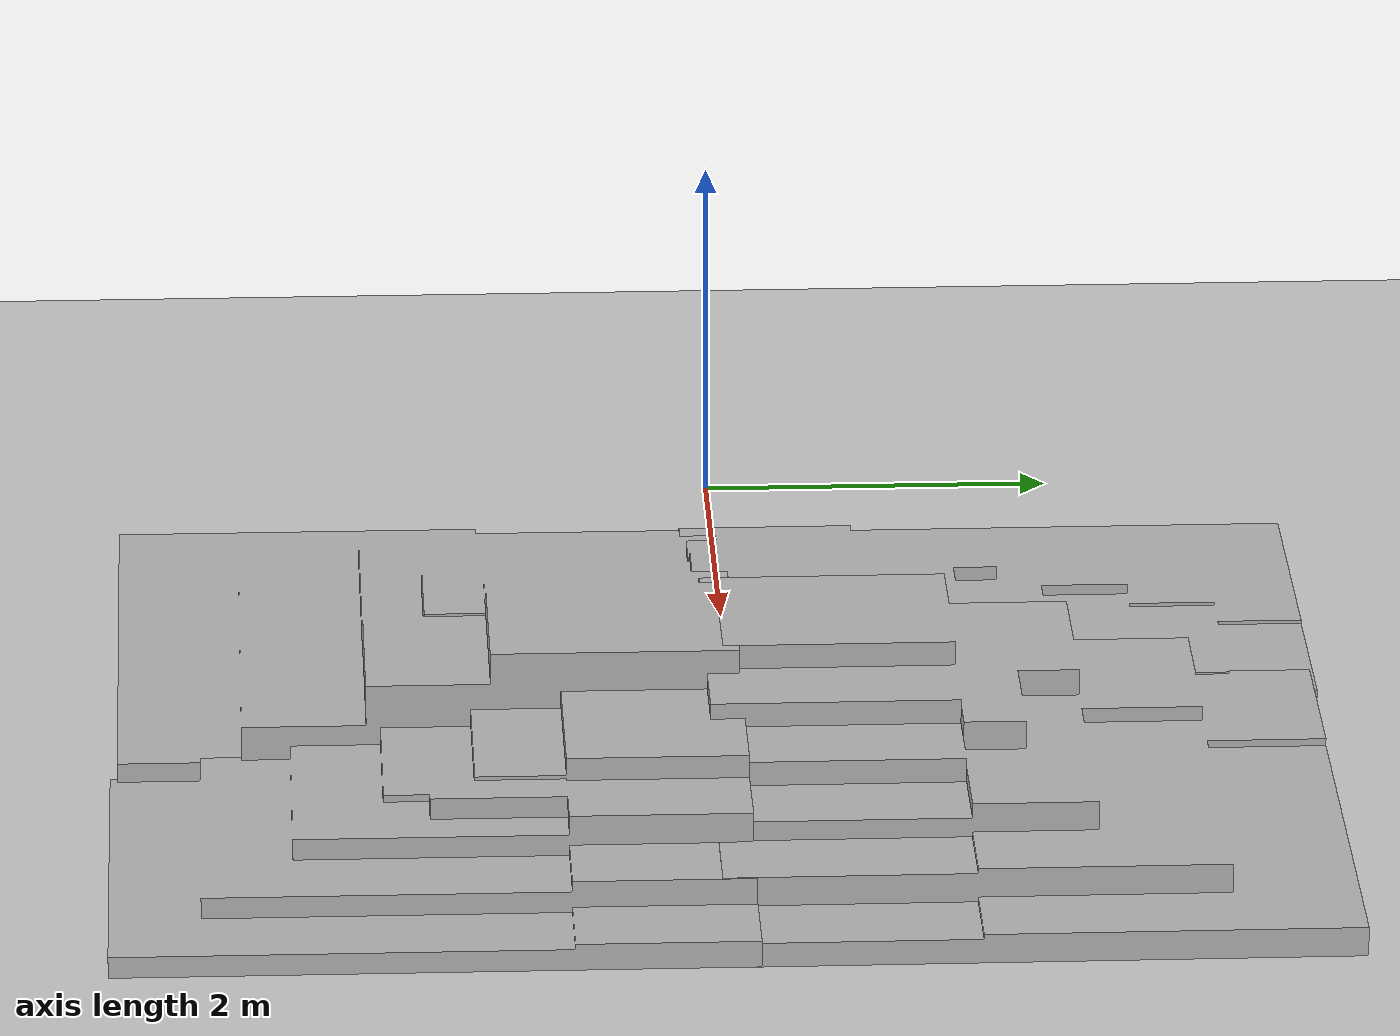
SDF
<?xml version="1.0" ?>
<sdf version="1.4">
  <world name="high_friction">
    <physics type='ode'>
      <gravity>0 0 -9.81</gravity>
      <ode>
        <solver>
          <type>quick</type>
          <iters>250</iters>
          <sor>1.</sor>
        </solver>
        <constraints>
          <cfm>0</cfm>
          <erp>0.2</erp>
          <contact_max_correcting_vel>100</contact_max_correcting_vel>
          <contact_surface_layer>0</contact_surface_layer>
        </constraints>
      </ode>
      <real_time_update_rate>1000</real_time_update_rate>
      <max_step_size>0.001</max_step_size>
      <real_time_factor>1</real_time_factor>
    </physics>
    <!-- A global light source -->
    <include>
      <uri>model://sun</uri>
    </include>
    <!-- A ground plane -->
    <model name="ground_plane">
        <static>true</static>
        <link name="link">
          <collision name="collision">
            <geometry>
              <plane>
                <normal>0 0 1</normal>
                <size>100 100</size>
              </plane>
            </geometry>
            <surface>
               <contact>
 				<ode>
                 <kp>15000</kp>
                 <kd>10.0</kd>
                 <max_vel>10000.0</max_vel>
                 <min_depth>0.0</min_depth>
               </ode>
             </contact>
              <friction>
                <ode>
                  <mu>100</mu>
                  <mu2>50</mu2>
                </ode>
              </friction>
            </surface>
          </collision>
          <visual name="visual">
            <cast_shadows>false</cast_shadows>
            <geometry>
              <plane>
                <normal>0 0 1</normal>
                <size>100 100</size>
              </plane>
            </geometry>
            <material>
              <script>
                <uri>file://media/materials/scripts/gazebo.material</uri>
                <name>Gazebo/Grey</name>
              </script>
            </material>
          </visual>
        </link>
	</model>
    <include>
                <uri>model://complex_stairs_1</uri>
                <name>stairs_1</name>
                <pose>3 3.3 0 0 0 -1.57</pose>
    </include>
        <include>
                <uri>model://complex_stairs_2</uri>
                <name>stairs_2</name>
                <pose>7 0.5 0 0 0 3.1415</pose>
    </include>
    <include>
                <uri>model://complex_stairs_1</uri>
                <name>stairs_3</name>
                <pose>5 -3.5 0 0 0 1.57</pose>
    </include>
    <include>
                <uri>model://complex_stairs_2</uri>
                <name>stairs_4</name>
                <pose>1 -0.7 0 0 0 0</pose>
    </include>
  </world>
</sdf>

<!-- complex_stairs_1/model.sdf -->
<sdf version="1.4">
	<model name="complex_stairs">
		<static>true</static>
		<link name="link">
			<pose>0 0 0 1.57 0 0</pose>
			<collision name="collision">
				<geometry>
					<mesh>
                                                <uri>model://complex_stairs_1/mesh/stairs.dae</uri>
						<scale>1.0 1.0 1.0</scale>
					</mesh>
				</geometry>
			</collision>
			<visual name="visual">
				<geometry>
					<mesh>
                                                <uri>model://complex_stairs_1/mesh/stairs.dae</uri>
						<scale>1.0 1.0 1.0</scale>
					</mesh>
				</geometry>
			</visual>
		</link>
	</model>
</sdf>

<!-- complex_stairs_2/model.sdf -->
<sdf version="1.4">
        <model name="complex_stairs_2">
		<static>true</static>
		<link name="link">
			<pose>0 0 0 1.57 0 0</pose>
			<collision name="collision">
				<geometry>
					<mesh>
                                                <uri>model://complex_stairs_2/mesh/stairs_mirrored.dae</uri>
						<scale>1.0 1.0 1.0</scale>
					</mesh>
				</geometry>
			</collision>
			<visual name="visual">
				<geometry>
					<mesh>
                                                <uri>model://complex_stairs_2/mesh/stairs_mirrored.dae</uri>
						<scale>1.0 1.0 1.0</scale>
					</mesh>
				</geometry>
			</visual>
		</link>
	</model>
</sdf>
